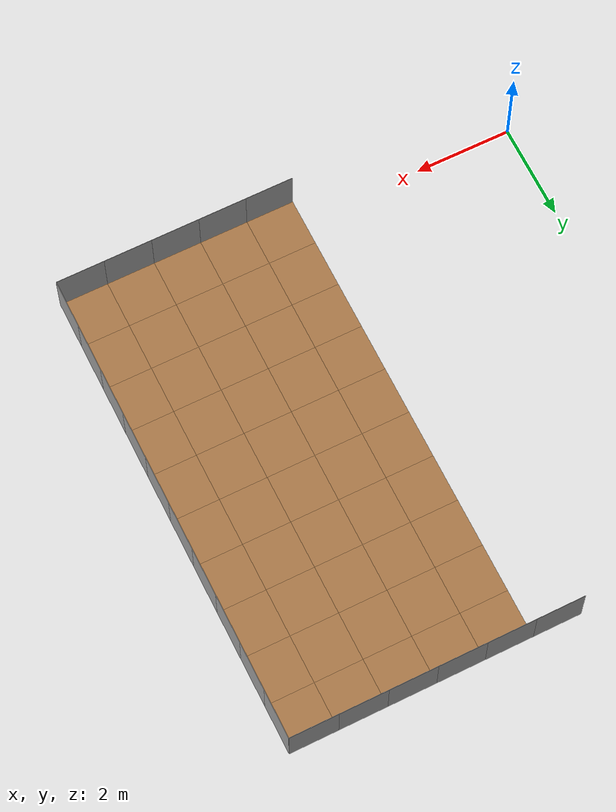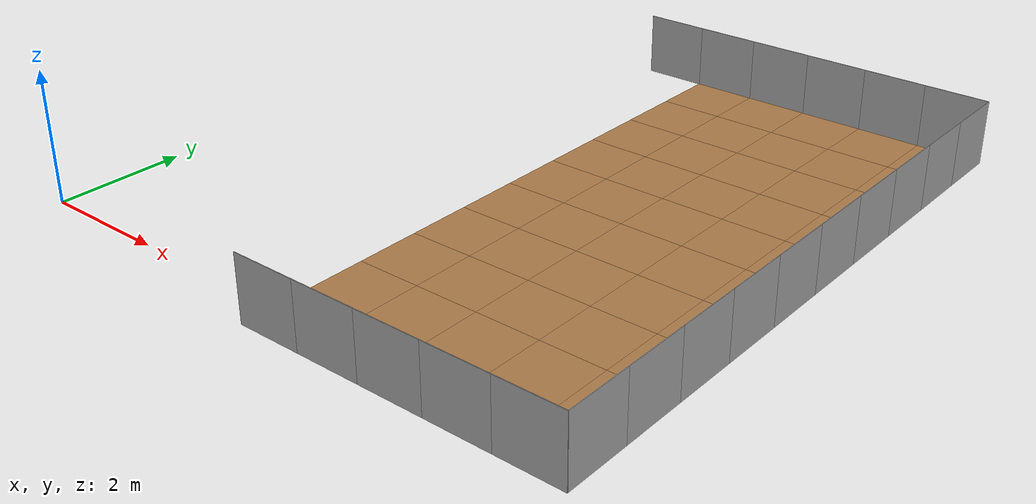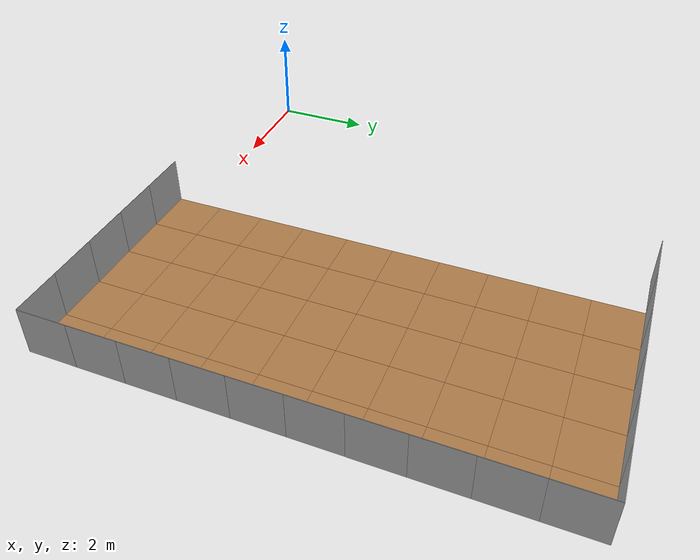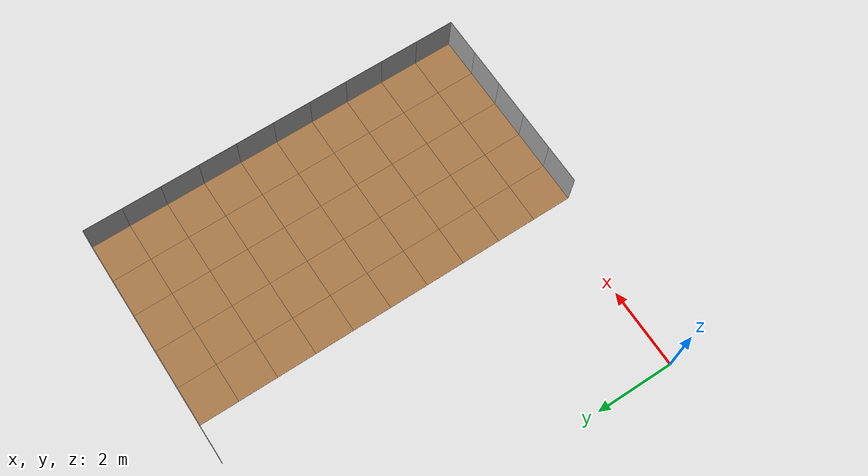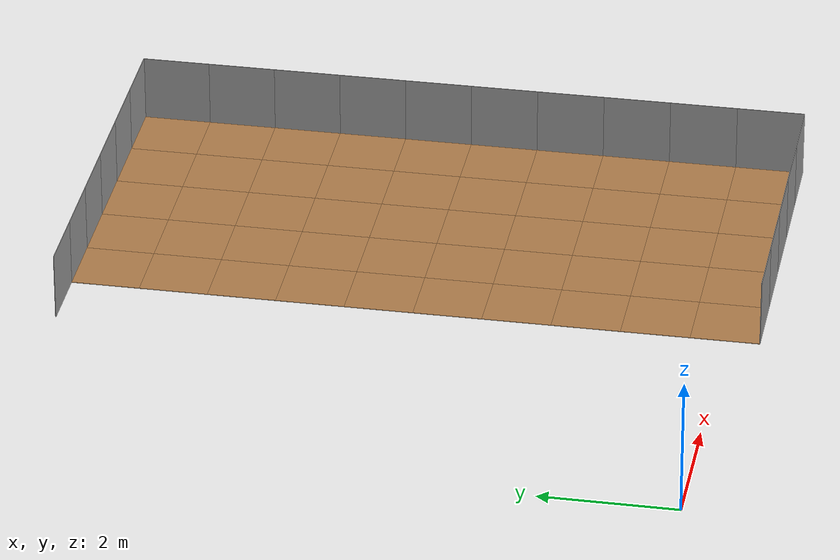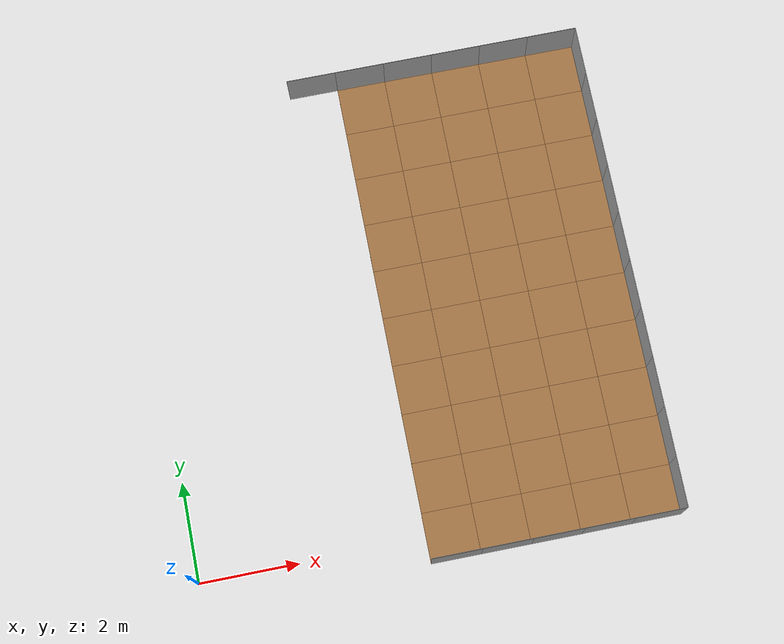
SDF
<sdf version="1.5">
 <world name="complexai">
  <include><uri>model://sun</uri></include>
  <model name="wall_top_4_9_Berlin_Storage_StorageRoom_1">
   <pose>4.0 9.5 0.5 0.0 0.0 0.0</pose>
   <static>true</static>
   <link name="link_wall_top_4_9_Berlin_Storage_StorageRoom_1">
    <collision name="collisionwall_top_4_9_Berlin_Storage_StorageRoom_1">
     <geometry><box><size>1.0 0.01 1.0</size></box></geometry>
    </collision>
    <visual name="visualwall_top_4_9_Berlin_Storage_StorageRoom_1">
     <geometry><box><size>1.0 0.01 1.0</size></box></geometry>
     <material>
      <script><uri>file://media/materials/scripts/gazebo.material</uri><name>Gazebo/Grey</name></script>
     </material>
    </visual>
   </link>
  </model>
  <model name="floor_5_9_Berlin_Storage_StorageRoom_1">
   <pose>5.0 9.0 0.0 0.0 0.0 0.0</pose>
   <static>true</static>
   <link name="link_floor_5_9_Berlin_Storage_StorageRoom_1">
    <collision name="collisionfloor_5_9_Berlin_Storage_StorageRoom_1">
     <geometry><box><size>1.0 1.0 0.01</size></box></geometry>
    </collision>
    <visual name="visualfloor_5_9_Berlin_Storage_StorageRoom_1">
     <geometry><box><size>1.0 1.0 0.01</size></box></geometry>
     <material>
      <script><uri>file://media/materials/scripts/gazebo.material</uri><name>Gazebo/WoodFloor</name></script>
     </material>
    </visual>
   </link>
  </model>
  <model name="wall_top_5_9_Berlin_Storage_StorageRoom_1">
   <pose>5.0 9.5 0.5 0.0 0.0 0.0</pose>
   <static>true</static>
   <link name="link_wall_top_5_9_Berlin_Storage_StorageRoom_1">
    <collision name="collisionwall_top_5_9_Berlin_Storage_StorageRoom_1">
     <geometry><box><size>1.0 0.01 1.0</size></box></geometry>
    </collision>
    <visual name="visualwall_top_5_9_Berlin_Storage_StorageRoom_1">
     <geometry><box><size>1.0 0.01 1.0</size></box></geometry>
     <material>
      <script><uri>file://media/materials/scripts/gazebo.material</uri><name>Gazebo/Grey</name></script>
     </material>
    </visual>
   </link>
  </model>
  <model name="floor_6_9_Berlin_Storage_StorageRoom_1">
   <pose>6.0 9.0 0.0 0.0 0.0 0.0</pose>
   <static>true</static>
   <link name="link_floor_6_9_Berlin_Storage_StorageRoom_1">
    <collision name="collisionfloor_6_9_Berlin_Storage_StorageRoom_1">
     <geometry><box><size>1.0 1.0 0.01</size></box></geometry>
    </collision>
    <visual name="visualfloor_6_9_Berlin_Storage_StorageRoom_1">
     <geometry><box><size>1.0 1.0 0.01</size></box></geometry>
     <material>
      <script><uri>file://media/materials/scripts/gazebo.material</uri><name>Gazebo/WoodFloor</name></script>
     </material>
    </visual>
   </link>
  </model>
  <model name="wall_top_6_9_Berlin_Storage_StorageRoom_1">
   <pose>6.0 9.5 0.5 0.0 0.0 0.0</pose>
   <static>true</static>
   <link name="link_wall_top_6_9_Berlin_Storage_StorageRoom_1">
    <collision name="collisionwall_top_6_9_Berlin_Storage_StorageRoom_1">
     <geometry><box><size>1.0 0.01 1.0</size></box></geometry>
    </collision>
    <visual name="visualwall_top_6_9_Berlin_Storage_StorageRoom_1">
     <geometry><box><size>1.0 0.01 1.0</size></box></geometry>
     <material>
      <script><uri>file://media/materials/scripts/gazebo.material</uri><name>Gazebo/Grey</name></script>
     </material>
    </visual>
   </link>
  </model>
  <model name="floor_6_8_Berlin_Storage_StorageRoom_1">
   <pose>6.0 8.0 0.0 0.0 0.0 0.0</pose>
   <static>true</static>
   <link name="link_floor_6_8_Berlin_Storage_StorageRoom_1">
    <collision name="collisionfloor_6_8_Berlin_Storage_StorageRoom_1">
     <geometry><box><size>1.0 1.0 0.01</size></box></geometry>
    </collision>
    <visual name="visualfloor_6_8_Berlin_Storage_StorageRoom_1">
     <geometry><box><size>1.0 1.0 0.01</size></box></geometry>
     <material>
      <script><uri>file://media/materials/scripts/gazebo.material</uri><name>Gazebo/WoodFloor</name></script>
     </material>
    </visual>
   </link>
  </model>
  <model name="floor_6_7_Berlin_Storage_StorageRoom_1">
   <pose>6.0 7.0 0.0 0.0 0.0 0.0</pose>
   <static>true</static>
   <link name="link_floor_6_7_Berlin_Storage_StorageRoom_1">
    <collision name="collisionfloor_6_7_Berlin_Storage_StorageRoom_1">
     <geometry><box><size>1.0 1.0 0.01</size></box></geometry>
    </collision>
    <visual name="visualfloor_6_7_Berlin_Storage_StorageRoom_1">
     <geometry><box><size>1.0 1.0 0.01</size></box></geometry>
     <material>
      <script><uri>file://media/materials/scripts/gazebo.material</uri><name>Gazebo/WoodFloor</name></script>
     </material>
    </visual>
   </link>
  </model>
  <model name="floor_6_6_Berlin_Storage_StorageRoom_1">
   <pose>6.0 6.0 0.0 0.0 0.0 0.0</pose>
   <static>true</static>
   <link name="link_floor_6_6_Berlin_Storage_StorageRoom_1">
    <collision name="collisionfloor_6_6_Berlin_Storage_StorageRoom_1">
     <geometry><box><size>1.0 1.0 0.01</size></box></geometry>
    </collision>
    <visual name="visualfloor_6_6_Berlin_Storage_StorageRoom_1">
     <geometry><box><size>1.0 1.0 0.01</size></box></geometry>
     <material>
      <script><uri>file://media/materials/scripts/gazebo.material</uri><name>Gazebo/WoodFloor</name></script>
     </material>
    </visual>
   </link>
  </model>
  <model name="floor_6_5_Berlin_Storage_StorageRoom_1">
   <pose>6.0 5.0 0.0 0.0 0.0 0.0</pose>
   <static>true</static>
   <link name="link_floor_6_5_Berlin_Storage_StorageRoom_1">
    <collision name="collisionfloor_6_5_Berlin_Storage_StorageRoom_1">
     <geometry><box><size>1.0 1.0 0.01</size></box></geometry>
    </collision>
    <visual name="visualfloor_6_5_Berlin_Storage_StorageRoom_1">
     <geometry><box><size>1.0 1.0 0.01</size></box></geometry>
     <material>
      <script><uri>file://media/materials/scripts/gazebo.material</uri><name>Gazebo/WoodFloor</name></script>
     </material>
    </visual>
   </link>
  </model>
  <model name="floor_6_4_Berlin_Storage_StorageRoom_1">
   <pose>6.0 4.0 0.0 0.0 0.0 0.0</pose>
   <static>true</static>
   <link name="link_floor_6_4_Berlin_Storage_StorageRoom_1">
    <collision name="collisionfloor_6_4_Berlin_Storage_StorageRoom_1">
     <geometry><box><size>1.0 1.0 0.01</size></box></geometry>
    </collision>
    <visual name="visualfloor_6_4_Berlin_Storage_StorageRoom_1">
     <geometry><box><size>1.0 1.0 0.01</size></box></geometry>
     <material>
      <script><uri>file://media/materials/scripts/gazebo.material</uri><name>Gazebo/WoodFloor</name></script>
     </material>
    </visual>
   </link>
  </model>
  <model name="floor_6_3_Berlin_Storage_StorageRoom_1">
   <pose>6.0 3.0 0.0 0.0 0.0 0.0</pose>
   <static>true</static>
   <link name="link_floor_6_3_Berlin_Storage_StorageRoom_1">
    <collision name="collisionfloor_6_3_Berlin_Storage_StorageRoom_1">
     <geometry><box><size>1.0 1.0 0.01</size></box></geometry>
    </collision>
    <visual name="visualfloor_6_3_Berlin_Storage_StorageRoom_1">
     <geometry><box><size>1.0 1.0 0.01</size></box></geometry>
     <material>
      <script><uri>file://media/materials/scripts/gazebo.material</uri><name>Gazebo/WoodFloor</name></script>
     </material>
    </visual>
   </link>
  </model>
  <model name="floor_6_2_Berlin_Storage_StorageRoom_1">
   <pose>6.0 2.0 0.0 0.0 0.0 0.0</pose>
   <static>true</static>
   <link name="link_floor_6_2_Berlin_Storage_StorageRoom_1">
    <collision name="collisionfloor_6_2_Berlin_Storage_StorageRoom_1">
     <geometry><box><size>1.0 1.0 0.01</size></box></geometry>
    </collision>
    <visual name="visualfloor_6_2_Berlin_Storage_StorageRoom_1">
     <geometry><box><size>1.0 1.0 0.01</size></box></geometry>
     <material>
      <script><uri>file://media/materials/scripts/gazebo.material</uri><name>Gazebo/WoodFloor</name></script>
     </material>
    </visual>
   </link>
  </model>
  <model name="floor_6_1_Berlin_Storage_StorageRoom_1">
   <pose>6.0 1.0 0.0 0.0 0.0 0.0</pose>
   <static>true</static>
   <link name="link_floor_6_1_Berlin_Storage_StorageRoom_1">
    <collision name="collisionfloor_6_1_Berlin_Storage_StorageRoom_1">
     <geometry><box><size>1.0 1.0 0.01</size></box></geometry>
    </collision>
    <visual name="visualfloor_6_1_Berlin_Storage_StorageRoom_1">
     <geometry><box><size>1.0 1.0 0.01</size></box></geometry>
     <material>
      <script><uri>file://media/materials/scripts/gazebo.material</uri><name>Gazebo/WoodFloor</name></script>
     </material>
    </visual>
   </link>
  </model>
  <model name="floor_6_0_Berlin_Storage_StorageRoom_1">
   <pose>6.0 0.0 0.0 0.0 0.0 0.0</pose>
   <static>true</static>
   <link name="link_floor_6_0_Berlin_Storage_StorageRoom_1">
    <collision name="collisionfloor_6_0_Berlin_Storage_StorageRoom_1">
     <geometry><box><size>1.0 1.0 0.01</size></box></geometry>
    </collision>
    <visual name="visualfloor_6_0_Berlin_Storage_StorageRoom_1">
     <geometry><box><size>1.0 1.0 0.01</size></box></geometry>
     <material>
      <script><uri>file://media/materials/scripts/gazebo.material</uri><name>Gazebo/WoodFloor</name></script>
     </material>
    </visual>
   </link>
  </model>
  <model name="wall_bottom_6_0_Berlin_Storage_StorageRoom_1">
   <pose>6.0 -0.5 0.5 0.0 0.0 0.0</pose>
   <static>true</static>
   <link name="link_wall_bottom_6_0_Berlin_Storage_StorageRoom_1">
    <collision name="collisionwall_bottom_6_0_Berlin_Storage_StorageRoom_1">
     <geometry><box><size>1.0 0.01 1.0</size></box></geometry>
    </collision>
    <visual name="visualwall_bottom_6_0_Berlin_Storage_StorageRoom_1">
     <geometry><box><size>1.0 0.01 1.0</size></box></geometry>
     <material>
      <script><uri>file://media/materials/scripts/gazebo.material</uri><name>Gazebo/Grey</name></script>
     </material>
    </visual>
   </link>
  </model>
  <model name="floor_7_0_Berlin_Storage_StorageRoom_1">
   <pose>7.0 0.0 0.0 0.0 0.0 0.0</pose>
   <static>true</static>
   <link name="link_floor_7_0_Berlin_Storage_StorageRoom_1">
    <collision name="collisionfloor_7_0_Berlin_Storage_StorageRoom_1">
     <geometry><box><size>1.0 1.0 0.01</size></box></geometry>
    </collision>
    <visual name="visualfloor_7_0_Berlin_Storage_StorageRoom_1">
     <geometry><box><size>1.0 1.0 0.01</size></box></geometry>
     <material>
      <script><uri>file://media/materials/scripts/gazebo.material</uri><name>Gazebo/WoodFloor</name></script>
     </material>
    </visual>
   </link>
  </model>
  <model name="wall_bottom_7_0_Berlin_Storage_StorageRoom_1">
   <pose>7.0 -0.5 0.5 0.0 0.0 0.0</pose>
   <static>true</static>
   <link name="link_wall_bottom_7_0_Berlin_Storage_StorageRoom_1">
    <collision name="collisionwall_bottom_7_0_Berlin_Storage_StorageRoom_1">
     <geometry><box><size>1.0 0.01 1.0</size></box></geometry>
    </collision>
    <visual name="visualwall_bottom_7_0_Berlin_Storage_StorageRoom_1">
     <geometry><box><size>1.0 0.01 1.0</size></box></geometry>
     <material>
      <script><uri>file://media/materials/scripts/gazebo.material</uri><name>Gazebo/Grey</name></script>
     </material>
    </visual>
   </link>
  </model>
  <model name="floor_8_0_Berlin_Storage_StorageRoom_1">
   <pose>8.0 0.0 0.0 0.0 0.0 0.0</pose>
   <static>true</static>
   <link name="link_floor_8_0_Berlin_Storage_StorageRoom_1">
    <collision name="collisionfloor_8_0_Berlin_Storage_StorageRoom_1">
     <geometry><box><size>1.0 1.0 0.01</size></box></geometry>
    </collision>
    <visual name="visualfloor_8_0_Berlin_Storage_StorageRoom_1">
     <geometry><box><size>1.0 1.0 0.01</size></box></geometry>
     <material>
      <script><uri>file://media/materials/scripts/gazebo.material</uri><name>Gazebo/WoodFloor</name></script>
     </material>
    </visual>
   </link>
  </model>
  <model name="wall_bottom_8_0_Berlin_Storage_StorageRoom_1">
   <pose>8.0 -0.5 0.5 0.0 0.0 0.0</pose>
   <static>true</static>
   <link name="link_wall_bottom_8_0_Berlin_Storage_StorageRoom_1">
    <collision name="collisionwall_bottom_8_0_Berlin_Storage_StorageRoom_1">
     <geometry><box><size>1.0 0.01 1.0</size></box></geometry>
    </collision>
    <visual name="visualwall_bottom_8_0_Berlin_Storage_StorageRoom_1">
     <geometry><box><size>1.0 0.01 1.0</size></box></geometry>
     <material>
      <script><uri>file://media/materials/scripts/gazebo.material</uri><name>Gazebo/Grey</name></script>
     </material>
    </visual>
   </link>
  </model>
  <model name="floor_8_1_Berlin_Storage_StorageRoom_1">
   <pose>8.0 1.0 0.0 0.0 0.0 0.0</pose>
   <static>true</static>
   <link name="link_floor_8_1_Berlin_Storage_StorageRoom_1">
    <collision name="collisionfloor_8_1_Berlin_Storage_StorageRoom_1">
     <geometry><box><size>1.0 1.0 0.01</size></box></geometry>
    </collision>
    <visual name="visualfloor_8_1_Berlin_Storage_StorageRoom_1">
     <geometry><box><size>1.0 1.0 0.01</size></box></geometry>
     <material>
      <script><uri>file://media/materials/scripts/gazebo.material</uri><name>Gazebo/WoodFloor</name></script>
     </material>
    </visual>
   </link>
  </model>
  <model name="floor_8_2_Berlin_Storage_StorageRoom_1">
   <pose>8.0 2.0 0.0 0.0 0.0 0.0</pose>
   <static>true</static>
   <link name="link_floor_8_2_Berlin_Storage_StorageRoom_1">
    <collision name="collisionfloor_8_2_Berlin_Storage_StorageRoom_1">
     <geometry><box><size>1.0 1.0 0.01</size></box></geometry>
    </collision>
    <visual name="visualfloor_8_2_Berlin_Storage_StorageRoom_1">
     <geometry><box><size>1.0 1.0 0.01</size></box></geometry>
     <material>
      <script><uri>file://media/materials/scripts/gazebo.material</uri><name>Gazebo/WoodFloor</name></script>
     </material>
    </visual>
   </link>
  </model>
  <model name="floor_8_3_Berlin_Storage_StorageRoom_1">
   <pose>8.0 3.0 0.0 0.0 0.0 0.0</pose>
   <static>true</static>
   <link name="link_floor_8_3_Berlin_Storage_StorageRoom_1">
    <collision name="collisionfloor_8_3_Berlin_Storage_StorageRoom_1">
     <geometry><box><size>1.0 1.0 0.01</size></box></geometry>
    </collision>
    <visual name="visualfloor_8_3_Berlin_Storage_StorageRoom_1">
     <geometry><box><size>1.0 1.0 0.01</size></box></geometry>
     <material>
      <script><uri>file://media/materials/scripts/gazebo.material</uri><name>Gazebo/WoodFloor</name></script>
     </material>
    </visual>
   </link>
  </model>
  <model name="floor_8_4_Berlin_Storage_StorageRoom_1">
   <pose>8.0 4.0 0.0 0.0 0.0 0.0</pose>
   <static>true</static>
   <link name="link_floor_8_4_Berlin_Storage_StorageRoom_1">
    <collision name="collisionfloor_8_4_Berlin_Storage_StorageRoom_1">
     <geometry><box><size>1.0 1.0 0.01</size></box></geometry>
    </collision>
    <visual name="visualfloor_8_4_Berlin_Storage_StorageRoom_1">
     <geometry><box><size>1.0 1.0 0.01</size></box></geometry>
     <material>
      <script><uri>file://media/materials/scripts/gazebo.material</uri><name>Gazebo/WoodFloor</name></script>
     </material>
    </visual>
   </link>
  </model>
  <model name="floor_8_5_Berlin_Storage_StorageRoom_1">
   <pose>8.0 5.0 0.0 0.0 0.0 0.0</pose>
   <static>true</static>
   <link name="link_floor_8_5_Berlin_Storage_StorageRoom_1">
    <collision name="collisionfloor_8_5_Berlin_Storage_StorageRoom_1">
     <geometry><box><size>1.0 1.0 0.01</size></box></geometry>
    </collision>
    <visual name="visualfloor_8_5_Berlin_Storage_StorageRoom_1">
     <geometry><box><size>1.0 1.0 0.01</size></box></geometry>
     <material>
      <script><uri>file://media/materials/scripts/gazebo.material</uri><name>Gazebo/WoodFloor</name></script>
     </material>
    </visual>
   </link>
  </model>
  <model name="floor_8_6_Berlin_Storage_StorageRoom_1">
   <pose>8.0 6.0 0.0 0.0 0.0 0.0</pose>
   <static>true</static>
   <link name="link_floor_8_6_Berlin_Storage_StorageRoom_1">
    <collision name="collisionfloor_8_6_Berlin_Storage_StorageRoom_1">
     <geometry><box><size>1.0 1.0 0.01</size></box></geometry>
    </collision>
    <visual name="visualfloor_8_6_Berlin_Storage_StorageRoom_1">
     <geometry><box><size>1.0 1.0 0.01</size></box></geometry>
     <material>
      <script><uri>file://media/materials/scripts/gazebo.material</uri><name>Gazebo/WoodFloor</name></script>
     </material>
    </visual>
   </link>
  </model>
  <model name="floor_8_7_Berlin_Storage_StorageRoom_1">
   <pose>8.0 7.0 0.0 0.0 0.0 0.0</pose>
   <static>true</static>
   <link name="link_floor_8_7_Berlin_Storage_StorageRoom_1">
    <collision name="collisionfloor_8_7_Berlin_Storage_StorageRoom_1">
     <geometry><box><size>1.0 1.0 0.01</size></box></geometry>
    </collision>
    <visual name="visualfloor_8_7_Berlin_Storage_StorageRoom_1">
     <geometry><box><size>1.0 1.0 0.01</size></box></geometry>
     <material>
      <script><uri>file://media/materials/scripts/gazebo.material</uri><name>Gazebo/WoodFloor</name></script>
     </material>
    </visual>
   </link>
  </model>
  <model name="floor_8_8_Berlin_Storage_StorageRoom_1">
   <pose>8.0 8.0 0.0 0.0 0.0 0.0</pose>
   <static>true</static>
   <link name="link_floor_8_8_Berlin_Storage_StorageRoom_1">
    <collision name="collisionfloor_8_8_Berlin_Storage_StorageRoom_1">
     <geometry><box><size>1.0 1.0 0.01</size></box></geometry>
    </collision>
    <visual name="visualfloor_8_8_Berlin_Storage_StorageRoom_1">
     <geometry><box><size>1.0 1.0 0.01</size></box></geometry>
     <material>
      <script><uri>file://media/materials/scripts/gazebo.material</uri><name>Gazebo/WoodFloor</name></script>
     </material>
    </visual>
   </link>
  </model>
  <model name="floor_8_9_Berlin_Storage_StorageRoom_1">
   <pose>8.0 9.0 0.0 0.0 0.0 0.0</pose>
   <static>true</static>
   <link name="link_floor_8_9_Berlin_Storage_StorageRoom_1">
    <collision name="collisionfloor_8_9_Berlin_Storage_StorageRoom_1">
     <geometry><box><size>1.0 1.0 0.01</size></box></geometry>
    </collision>
    <visual name="visualfloor_8_9_Berlin_Storage_StorageRoom_1">
     <geometry><box><size>1.0 1.0 0.01</size></box></geometry>
     <material>
      <script><uri>file://media/materials/scripts/gazebo.material</uri><name>Gazebo/WoodFloor</name></script>
     </material>
    </visual>
   </link>
  </model>
  <model name="wall_top_8_9_Berlin_Storage_StorageRoom_1">
   <pose>8.0 9.5 0.5 0.0 0.0 0.0</pose>
   <static>true</static>
   <link name="link_wall_top_8_9_Berlin_Storage_StorageRoom_1">
    <collision name="collisionwall_top_8_9_Berlin_Storage_StorageRoom_1">
     <geometry><box><size>1.0 0.01 1.0</size></box></geometry>
    </collision>
    <visual name="visualwall_top_8_9_Berlin_Storage_StorageRoom_1">
     <geometry><box><size>1.0 0.01 1.0</size></box></geometry>
     <material>
      <script><uri>file://media/materials/scripts/gazebo.material</uri><name>Gazebo/Grey</name></script>
     </material>
    </visual>
   </link>
  </model>
  <model name="floor_9_9_Berlin_Storage_StorageRoom_1">
   <pose>9.0 9.0 0.0 0.0 0.0 0.0</pose>
   <static>true</static>
   <link name="link_floor_9_9_Berlin_Storage_StorageRoom_1">
    <collision name="collisionfloor_9_9_Berlin_Storage_StorageRoom_1">
     <geometry><box><size>1.0 1.0 0.01</size></box></geometry>
    </collision>
    <visual name="visualfloor_9_9_Berlin_Storage_StorageRoom_1">
     <geometry><box><size>1.0 1.0 0.01</size></box></geometry>
     <material>
      <script><uri>file://media/materials/scripts/gazebo.material</uri><name>Gazebo/WoodFloor</name></script>
     </material>
    </visual>
   </link>
  </model>
  <model name="wall_right_9_9_Berlin_Storage_StorageRoom_1">
   <pose>9.5 9.0 0.5 0.0 0.0 1.5707963</pose>
   <static>true</static>
   <link name="link_wall_right_9_9_Berlin_Storage_StorageRoom_1">
    <collision name="collisionwall_right_9_9_Berlin_Storage_StorageRoom_1">
     <geometry><box><size>1.0 0.01 1.0</size></box></geometry>
    </collision>
    <visual name="visualwall_right_9_9_Berlin_Storage_StorageRoom_1">
     <geometry><box><size>1.0 0.01 1.0</size></box></geometry>
     <material>
      <script><uri>file://media/materials/scripts/gazebo.material</uri><name>Gazebo/Grey</name></script>
     </material>
    </visual>
   </link>
  </model>
  <model name="wall_top_9_9_Berlin_Storage_StorageRoom_1">
   <pose>9.0 9.5 0.5 0.0 0.0 0.0</pose>
   <static>true</static>
   <link name="link_wall_top_9_9_Berlin_Storage_StorageRoom_1">
    <collision name="collisionwall_top_9_9_Berlin_Storage_StorageRoom_1">
     <geometry><box><size>1.0 0.01 1.0</size></box></geometry>
    </collision>
    <visual name="visualwall_top_9_9_Berlin_Storage_StorageRoom_1">
     <geometry><box><size>1.0 0.01 1.0</size></box></geometry>
     <material>
      <script><uri>file://media/materials/scripts/gazebo.material</uri><name>Gazebo/Grey</name></script>
     </material>
    </visual>
   </link>
  </model>
  <model name="floor_9_8_Berlin_Storage_StorageRoom_1">
   <pose>9.0 8.0 0.0 0.0 0.0 0.0</pose>
   <static>true</static>
   <link name="link_floor_9_8_Berlin_Storage_StorageRoom_1">
    <collision name="collisionfloor_9_8_Berlin_Storage_StorageRoom_1">
     <geometry><box><size>1.0 1.0 0.01</size></box></geometry>
    </collision>
    <visual name="visualfloor_9_8_Berlin_Storage_StorageRoom_1">
     <geometry><box><size>1.0 1.0 0.01</size></box></geometry>
     <material>
      <script><uri>file://media/materials/scripts/gazebo.material</uri><name>Gazebo/WoodFloor</name></script>
     </material>
    </visual>
   </link>
  </model>
  <model name="wall_right_9_8_Berlin_Storage_StorageRoom_1">
   <pose>9.5 8.0 0.5 0.0 0.0 1.5707963</pose>
   <static>true</static>
   <link name="link_wall_right_9_8_Berlin_Storage_StorageRoom_1">
    <collision name="collisionwall_right_9_8_Berlin_Storage_StorageRoom_1">
     <geometry><box><size>1.0 0.01 1.0</size></box></geometry>
    </collision>
    <visual name="visualwall_right_9_8_Berlin_Storage_StorageRoom_1">
     <geometry><box><size>1.0 0.01 1.0</size></box></geometry>
     <material>
      <script><uri>file://media/materials/scripts/gazebo.material</uri><name>Gazebo/Grey</name></script>
     </material>
    </visual>
   </link>
  </model>
  <model name="floor_9_7_Berlin_Storage_StorageRoom_1">
   <pose>9.0 7.0 0.0 0.0 0.0 0.0</pose>
   <static>true</static>
   <link name="link_floor_9_7_Berlin_Storage_StorageRoom_1">
    <collision name="collisionfloor_9_7_Berlin_Storage_StorageRoom_1">
     <geometry><box><size>1.0 1.0 0.01</size></box></geometry>
    </collision>
    <visual name="visualfloor_9_7_Berlin_Storage_StorageRoom_1">
     <geometry><box><size>1.0 1.0 0.01</size></box></geometry>
     <material>
      <script><uri>file://media/materials/scripts/gazebo.material</uri><name>Gazebo/WoodFloor</name></script>
     </material>
    </visual>
   </link>
  </model>
  <model name="wall_right_9_7_Berlin_Storage_StorageRoom_1">
   <pose>9.5 7.0 0.5 0.0 0.0 1.5707963</pose>
   <static>true</static>
   <link name="link_wall_right_9_7_Berlin_Storage_StorageRoom_1">
    <collision name="collisionwall_right_9_7_Berlin_Storage_StorageRoom_1">
     <geometry><box><size>1.0 0.01 1.0</size></box></geometry>
    </collision>
    <visual name="visualwall_right_9_7_Berlin_Storage_StorageRoom_1">
     <geometry><box><size>1.0 0.01 1.0</size></box></geometry>
     <material>
      <script><uri>file://media/materials/scripts/gazebo.material</uri><name>Gazebo/Grey</name></script>
     </material>
    </visual>
   </link>
  </model>
  <model name="floor_9_6_Berlin_Storage_StorageRoom_1">
   <pose>9.0 6.0 0.0 0.0 0.0 0.0</pose>
   <static>true</static>
   <link name="link_floor_9_6_Berlin_Storage_StorageRoom_1">
    <collision name="collisionfloor_9_6_Berlin_Storage_StorageRoom_1">
     <geometry><box><size>1.0 1.0 0.01</size></box></geometry>
    </collision>
    <visual name="visualfloor_9_6_Berlin_Storage_StorageRoom_1">
     <geometry><box><size>1.0 1.0 0.01</size></box></geometry>
     <material>
      <script><uri>file://media/materials/scripts/gazebo.material</uri><name>Gazebo/WoodFloor</name></script>
     </material>
    </visual>
   </link>
  </model>
  <model name="wall_right_9_6_Berlin_Storage_StorageRoom_1">
   <pose>9.5 6.0 0.5 0.0 0.0 1.5707963</pose>
   <static>true</static>
   <link name="link_wall_right_9_6_Berlin_Storage_StorageRoom_1">
    <collision name="collisionwall_right_9_6_Berlin_Storage_StorageRoom_1">
     <geometry><box><size>1.0 0.01 1.0</size></box></geometry>
    </collision>
    <visual name="visualwall_right_9_6_Berlin_Storage_StorageRoom_1">
     <geometry><box><size>1.0 0.01 1.0</size></box></geometry>
     <material>
      <script><uri>file://media/materials/scripts/gazebo.material</uri><name>Gazebo/Grey</name></script>
     </material>
    </visual>
   </link>
  </model>
  <model name="floor_9_5_Berlin_Storage_StorageRoom_1">
   <pose>9.0 5.0 0.0 0.0 0.0 0.0</pose>
   <static>true</static>
   <link name="link_floor_9_5_Berlin_Storage_StorageRoom_1">
    <collision name="collisionfloor_9_5_Berlin_Storage_StorageRoom_1">
     <geometry><box><size>1.0 1.0 0.01</size></box></geometry>
    </collision>
    <visual name="visualfloor_9_5_Berlin_Storage_StorageRoom_1">
     <geometry><box><size>1.0 1.0 0.01</size></box></geometry>
     <material>
      <script><uri>file://media/materials/scripts/gazebo.material</uri><name>Gazebo/WoodFloor</name></script>
     </material>
    </visual>
   </link>
  </model>
  <model name="wall_right_9_5_Berlin_Storage_StorageRoom_1">
   <pose>9.5 5.0 0.5 0.0 0.0 1.5707963</pose>
   <static>true</static>
   <link name="link_wall_right_9_5_Berlin_Storage_StorageRoom_1">
    <collision name="collisionwall_right_9_5_Berlin_Storage_StorageRoom_1">
     <geometry><box><size>1.0 0.01 1.0</size></box></geometry>
    </collision>
    <visual name="visualwall_right_9_5_Berlin_Storage_StorageRoom_1">
     <geometry><box><size>1.0 0.01 1.0</size></box></geometry>
     <material>
      <script><uri>file://media/materials/scripts/gazebo.material</uri><name>Gazebo/Grey</name></script>
     </material>
    </visual>
   </link>
  </model>
  <model name="floor_9_4_Berlin_Storage_StorageRoom_1">
   <pose>9.0 4.0 0.0 0.0 0.0 0.0</pose>
   <static>true</static>
   <link name="link_floor_9_4_Berlin_Storage_StorageRoom_1">
    <collision name="collisionfloor_9_4_Berlin_Storage_StorageRoom_1">
     <geometry><box><size>1.0 1.0 0.01</size></box></geometry>
    </collision>
    <visual name="visualfloor_9_4_Berlin_Storage_StorageRoom_1">
     <geometry><box><size>1.0 1.0 0.01</size></box></geometry>
     <material>
      <script><uri>file://media/materials/scripts/gazebo.material</uri><name>Gazebo/WoodFloor</name></script>
     </material>
    </visual>
   </link>
  </model>
  <model name="wall_right_9_4_Berlin_Storage_StorageRoom_1">
   <pose>9.5 4.0 0.5 0.0 0.0 1.5707963</pose>
   <static>true</static>
   <link name="link_wall_right_9_4_Berlin_Storage_StorageRoom_1">
    <collision name="collisionwall_right_9_4_Berlin_Storage_StorageRoom_1">
     <geometry><box><size>1.0 0.01 1.0</size></box></geometry>
    </collision>
    <visual name="visualwall_right_9_4_Berlin_Storage_StorageRoom_1">
     <geometry><box><size>1.0 0.01 1.0</size></box></geometry>
     <material>
      <script><uri>file://media/materials/scripts/gazebo.material</uri><name>Gazebo/Grey</name></script>
     </material>
    </visual>
   </link>
  </model>
  <model name="floor_9_3_Berlin_Storage_StorageRoom_1">
   <pose>9.0 3.0 0.0 0.0 0.0 0.0</pose>
   <static>true</static>
   <link name="link_floor_9_3_Berlin_Storage_StorageRoom_1">
    <collision name="collisionfloor_9_3_Berlin_Storage_StorageRoom_1">
     <geometry><box><size>1.0 1.0 0.01</size></box></geometry>
    </collision>
    <visual name="visualfloor_9_3_Berlin_Storage_StorageRoom_1">
     <geometry><box><size>1.0 1.0 0.01</size></box></geometry>
     <material>
      <script><uri>file://media/materials/scripts/gazebo.material</uri><name>Gazebo/WoodFloor</name></script>
     </material>
    </visual>
   </link>
  </model>
  <model name="wall_right_9_3_Berlin_Storage_StorageRoom_1">
   <pose>9.5 3.0 0.5 0.0 0.0 1.5707963</pose>
   <static>true</static>
   <link name="link_wall_right_9_3_Berlin_Storage_StorageRoom_1">
    <collision name="collisionwall_right_9_3_Berlin_Storage_StorageRoom_1">
     <geometry><box><size>1.0 0.01 1.0</size></box></geometry>
    </collision>
    <visual name="visualwall_right_9_3_Berlin_Storage_StorageRoom_1">
     <geometry><box><size>1.0 0.01 1.0</size></box></geometry>
     <material>
      <script><uri>file://media/materials/scripts/gazebo.material</uri><name>Gazebo/Grey</name></script>
     </material>
    </visual>
   </link>
  </model>
  <model name="floor_9_2_Berlin_Storage_StorageRoom_1">
   <pose>9.0 2.0 0.0 0.0 0.0 0.0</pose>
   <static>true</static>
   <link name="link_floor_9_2_Berlin_Storage_StorageRoom_1">
    <collision name="collisionfloor_9_2_Berlin_Storage_StorageRoom_1">
     <geometry><box><size>1.0 1.0 0.01</size></box></geometry>
    </collision>
    <visual name="visualfloor_9_2_Berlin_Storage_StorageRoom_1">
     <geometry><box><size>1.0 1.0 0.01</size></box></geometry>
     <material>
      <script><uri>file://media/materials/scripts/gazebo.material</uri><name>Gazebo/WoodFloor</name></script>
     </material>
    </visual>
   </link>
  </model>
  <model name="wall_right_9_2_Berlin_Storage_StorageRoom_1">
   <pose>9.5 2.0 0.5 0.0 0.0 1.5707963</pose>
   <static>true</static>
   <link name="link_wall_right_9_2_Berlin_Storage_StorageRoom_1">
    <collision name="collisionwall_right_9_2_Berlin_Storage_StorageRoom_1">
     <geometry><box><size>1.0 0.01 1.0</size></box></geometry>
    </collision>
    <visual name="visualwall_right_9_2_Berlin_Storage_StorageRoom_1">
     <geometry><box><size>1.0 0.01 1.0</size></box></geometry>
     <material>
      <script><uri>file://media/materials/scripts/gazebo.material</uri><name>Gazebo/Grey</name></script>
     </material>
    </visual>
   </link>
  </model>
  <model name="floor_9_1_Berlin_Storage_StorageRoom_1">
   <pose>9.0 1.0 0.0 0.0 0.0 0.0</pose>
   <static>true</static>
   <link name="link_floor_9_1_Berlin_Storage_StorageRoom_1">
    <collision name="collisionfloor_9_1_Berlin_Storage_StorageRoom_1">
     <geometry><box><size>1.0 1.0 0.01</size></box></geometry>
    </collision>
    <visual name="visualfloor_9_1_Berlin_Storage_StorageRoom_1">
     <geometry><box><size>1.0 1.0 0.01</size></box></geometry>
     <material>
      <script><uri>file://media/materials/scripts/gazebo.material</uri><name>Gazebo/WoodFloor</name></script>
     </material>
    </visual>
   </link>
  </model>
  <model name="wall_right_9_1_Berlin_Storage_StorageRoom_1">
   <pose>9.5 1.0 0.5 0.0 0.0 1.5707963</pose>
   <static>true</static>
   <link name="link_wall_right_9_1_Berlin_Storage_StorageRoom_1">
    <collision name="collisionwall_right_9_1_Berlin_Storage_StorageRoom_1">
     <geometry><box><size>1.0 0.01 1.0</size></box></geometry>
    </collision>
    <visual name="visualwall_right_9_1_Berlin_Storage_StorageRoom_1">
     <geometry><box><size>1.0 0.01 1.0</size></box></geometry>
     <material>
      <script><uri>file://media/materials/scripts/gazebo.material</uri><name>Gazebo/Grey</name></script>
     </material>
    </visual>
   </link>
  </model>
  <model name="floor_9_0_Berlin_Storage_StorageRoom_1">
   <pose>9.0 0.0 0.0 0.0 0.0 0.0</pose>
   <static>true</static>
   <link name="link_floor_9_0_Berlin_Storage_StorageRoom_1">
    <collision name="collisionfloor_9_0_Berlin_Storage_StorageRoom_1">
     <geometry><box><size>1.0 1.0 0.01</size></box></geometry>
    </collision>
    <visual name="visualfloor_9_0_Berlin_Storage_StorageRoom_1">
     <geometry><box><size>1.0 1.0 0.01</size></box></geometry>
     <material>
      <script><uri>file://media/materials/scripts/gazebo.material</uri><name>Gazebo/WoodFloor</name></script>
     </material>
    </visual>
   </link>
  </model>
  <model name="wall_right_9_0_Berlin_Storage_StorageRoom_1">
   <pose>9.5 0.0 0.5 0.0 0.0 1.5707963</pose>
   <static>true</static>
   <link name="link_wall_right_9_0_Berlin_Storage_StorageRoom_1">
    <collision name="collisionwall_right_9_0_Berlin_Storage_StorageRoom_1">
     <geometry><box><size>1.0 0.01 1.0</size></box></geometry>
    </collision>
    <visual name="visualwall_right_9_0_Berlin_Storage_StorageRoom_1">
     <geometry><box><size>1.0 0.01 1.0</size></box></geometry>
     <material>
      <script><uri>file://media/materials/scripts/gazebo.material</uri><name>Gazebo/Grey</name></script>
     </material>
    </visual>
   </link>
  </model>
  <model name="wall_bottom_9_0_Berlin_Storage_StorageRoom_1">
   <pose>9.0 -0.5 0.5 0.0 0.0 0.0</pose>
   <static>true</static>
   <link name="link_wall_bottom_9_0_Berlin_Storage_StorageRoom_1">
    <collision name="collisionwall_bottom_9_0_Berlin_Storage_StorageRoom_1">
     <geometry><box><size>1.0 0.01 1.0</size></box></geometry>
    </collision>
    <visual name="visualwall_bottom_9_0_Berlin_Storage_StorageRoom_1">
     <geometry><box><size>1.0 0.01 1.0</size></box></geometry>
     <material>
      <script><uri>file://media/materials/scripts/gazebo.material</uri><name>Gazebo/Grey</name></script>
     </material>
    </visual>
   </link>
  </model>
  <model name="floor_7_1_Berlin_Storage_StorageRoom_1">
   <pose>7.0 1.0 0.0 0.0 0.0 0.0</pose>
   <static>true</static>
   <link name="link_floor_7_1_Berlin_Storage_StorageRoom_1">
    <collision name="collisionfloor_7_1_Berlin_Storage_StorageRoom_1">
     <geometry><box><size>1.0 1.0 0.01</size></box></geometry>
    </collision>
    <visual name="visualfloor_7_1_Berlin_Storage_StorageRoom_1">
     <geometry><box><size>1.0 1.0 0.01</size></box></geometry>
     <material>
      <script><uri>file://media/materials/scripts/gazebo.material</uri><name>Gazebo/WoodFloor</name></script>
     </material>
    </visual>
   </link>
  </model>
  <model name="floor_7_2_Berlin_Storage_StorageRoom_1">
   <pose>7.0 2.0 0.0 0.0 0.0 0.0</pose>
   <static>true</static>
   <link name="link_floor_7_2_Berlin_Storage_StorageRoom_1">
    <collision name="collisionfloor_7_2_Berlin_Storage_StorageRoom_1">
     <geometry><box><size>1.0 1.0 0.01</size></box></geometry>
    </collision>
    <visual name="visualfloor_7_2_Berlin_Storage_StorageRoom_1">
     <geometry><box><size>1.0 1.0 0.01</size></box></geometry>
     <material>
      <script><uri>file://media/materials/scripts/gazebo.material</uri><name>Gazebo/WoodFloor</name></script>
     </material>
    </visual>
   </link>
  </model>
  <model name="floor_7_3_Berlin_Storage_StorageRoom_1">
   <pose>7.0 3.0 0.0 0.0 0.0 0.0</pose>
   <static>true</static>
   <link name="link_floor_7_3_Berlin_Storage_StorageRoom_1">
    <collision name="collisionfloor_7_3_Berlin_Storage_StorageRoom_1">
     <geometry><box><size>1.0 1.0 0.01</size></box></geometry>
    </collision>
    <visual name="visualfloor_7_3_Berlin_Storage_StorageRoom_1">
     <geometry><box><size>1.0 1.0 0.01</size></box></geometry>
     <material>
      <script><uri>file://media/materials/scripts/gazebo.material</uri><name>Gazebo/WoodFloor</name></script>
     </material>
    </visual>
   </link>
  </model>
  <model name="floor_7_4_Berlin_Storage_StorageRoom_1">
   <pose>7.0 4.0 0.0 0.0 0.0 0.0</pose>
   <static>true</static>
   <link name="link_floor_7_4_Berlin_Storage_StorageRoom_1">
    <collision name="collisionfloor_7_4_Berlin_Storage_StorageRoom_1">
     <geometry><box><size>1.0 1.0 0.01</size></box></geometry>
    </collision>
    <visual name="visualfloor_7_4_Berlin_Storage_StorageRoom_1">
     <geometry><box><size>1.0 1.0 0.01</size></box></geometry>
     <material>
      <script><uri>file://media/materials/scripts/gazebo.material</uri><name>Gazebo/WoodFloor</name></script>
     </material>
    </visual>
   </link>
  </model>
  <model name="floor_7_5_Berlin_Storage_StorageRoom_1">
   <pose>7.0 5.0 0.0 0.0 0.0 0.0</pose>
   <static>true</static>
   <link name="link_floor_7_5_Berlin_Storage_StorageRoom_1">
    <collision name="collisionfloor_7_5_Berlin_Storage_StorageRoom_1">
     <geometry><box><size>1.0 1.0 0.01</size></box></geometry>
    </collision>
    <visual name="visualfloor_7_5_Berlin_Storage_StorageRoom_1">
     <geometry><box><size>1.0 1.0 0.01</size></box></geometry>
     <material>
      <script><uri>file://media/materials/scripts/gazebo.material</uri><name>Gazebo/WoodFloor</name></script>
     </material>
    </visual>
   </link>
  </model>
  <model name="floor_7_6_Berlin_Storage_StorageRoom_1">
   <pose>7.0 6.0 0.0 0.0 0.0 0.0</pose>
   <static>true</static>
   <link name="link_floor_7_6_Berlin_Storage_StorageRoom_1">
    <collision name="collisionfloor_7_6_Berlin_Storage_StorageRoom_1">
     <geometry><box><size>1.0 1.0 0.01</size></box></geometry>
    </collision>
    <visual name="visualfloor_7_6_Berlin_Storage_StorageRoom_1">
     <geometry><box><size>1.0 1.0 0.01</size></box></geometry>
     <material>
      <script><uri>file://media/materials/scripts/gazebo.material</uri><name>Gazebo/WoodFloor</name></script>
     </material>
    </visual>
   </link>
  </model>
  <model name="floor_7_7_Berlin_Storage_StorageRoom_1">
   <pose>7.0 7.0 0.0 0.0 0.0 0.0</pose>
   <static>true</static>
   <link name="link_floor_7_7_Berlin_Storage_StorageRoom_1">
    <collision name="collisionfloor_7_7_Berlin_Storage_StorageRoom_1">
     <geometry><box><size>1.0 1.0 0.01</size></box></geometry>
    </collision>
    <visual name="visualfloor_7_7_Berlin_Storage_StorageRoom_1">
     <geometry><box><size>1.0 1.0 0.01</size></box></geometry>
     <material>
      <script><uri>file://media/materials/scripts/gazebo.material</uri><name>Gazebo/WoodFloor</name></script>
     </material>
    </visual>
   </link>
  </model>
  <model name="floor_7_8_Berlin_Storage_StorageRoom_1">
   <pose>7.0 8.0 0.0 0.0 0.0 0.0</pose>
   <static>true</static>
   <link name="link_floor_7_8_Berlin_Storage_StorageRoom_1">
    <collision name="collisionfloor_7_8_Berlin_Storage_StorageRoom_1">
     <geometry><box><size>1.0 1.0 0.01</size></box></geometry>
    </collision>
    <visual name="visualfloor_7_8_Berlin_Storage_StorageRoom_1">
     <geometry><box><size>1.0 1.0 0.01</size></box></geometry>
     <material>
      <script><uri>file://media/materials/scripts/gazebo.material</uri><name>Gazebo/WoodFloor</name></script>
     </material>
    </visual>
   </link>
  </model>
  <model name="floor_7_9_Berlin_Storage_StorageRoom_1">
   <pose>7.0 9.0 0.0 0.0 0.0 0.0</pose>
   <static>true</static>
   <link name="link_floor_7_9_Berlin_Storage_StorageRoom_1">
    <collision name="collisionfloor_7_9_Berlin_Storage_StorageRoom_1">
     <geometry><box><size>1.0 1.0 0.01</size></box></geometry>
    </collision>
    <visual name="visualfloor_7_9_Berlin_Storage_StorageRoom_1">
     <geometry><box><size>1.0 1.0 0.01</size></box></geometry>
     <material>
      <script><uri>file://media/materials/scripts/gazebo.material</uri><name>Gazebo/WoodFloor</name></script>
     </material>
    </visual>
   </link>
  </model>
  <model name="wall_top_7_9_Berlin_Storage_StorageRoom_1">
   <pose>7.0 9.5 0.5 0.0 0.0 0.0</pose>
   <static>true</static>
   <link name="link_wall_top_7_9_Berlin_Storage_StorageRoom_1">
    <collision name="collisionwall_top_7_9_Berlin_Storage_StorageRoom_1">
     <geometry><box><size>1.0 0.01 1.0</size></box></geometry>
    </collision>
    <visual name="visualwall_top_7_9_Berlin_Storage_StorageRoom_1">
     <geometry><box><size>1.0 0.01 1.0</size></box></geometry>
     <material>
      <script><uri>file://media/materials/scripts/gazebo.material</uri><name>Gazebo/Grey</name></script>
     </material>
    </visual>
   </link>
  </model>
  <model name="floor_5_8_Berlin_Storage_StorageRoom_1">
   <pose>5.0 8.0 0.0 0.0 0.0 0.0</pose>
   <static>true</static>
   <link name="link_floor_5_8_Berlin_Storage_StorageRoom_1">
    <collision name="collisionfloor_5_8_Berlin_Storage_StorageRoom_1">
     <geometry><box><size>1.0 1.0 0.01</size></box></geometry>
    </collision>
    <visual name="visualfloor_5_8_Berlin_Storage_StorageRoom_1">
     <geometry><box><size>1.0 1.0 0.01</size></box></geometry>
     <material>
      <script><uri>file://media/materials/scripts/gazebo.material</uri><name>Gazebo/WoodFloor</name></script>
     </material>
    </visual>
   </link>
  </model>
  <model name="floor_5_7_Berlin_Storage_StorageRoom_1">
   <pose>5.0 7.0 0.0 0.0 0.0 0.0</pose>
   <static>true</static>
   <link name="link_floor_5_7_Berlin_Storage_StorageRoom_1">
    <collision name="collisionfloor_5_7_Berlin_Storage_StorageRoom_1">
     <geometry><box><size>1.0 1.0 0.01</size></box></geometry>
    </collision>
    <visual name="visualfloor_5_7_Berlin_Storage_StorageRoom_1">
     <geometry><box><size>1.0 1.0 0.01</size></box></geometry>
     <material>
      <script><uri>file://media/materials/scripts/gazebo.material</uri><name>Gazebo/WoodFloor</name></script>
     </material>
    </visual>
   </link>
  </model>
  <model name="floor_5_6_Berlin_Storage_StorageRoom_1">
   <pose>5.0 6.0 0.0 0.0 0.0 0.0</pose>
   <static>true</static>
   <link name="link_floor_5_6_Berlin_Storage_StorageRoom_1">
    <collision name="collisionfloor_5_6_Berlin_Storage_StorageRoom_1">
     <geometry><box><size>1.0 1.0 0.01</size></box></geometry>
    </collision>
    <visual name="visualfloor_5_6_Berlin_Storage_StorageRoom_1">
     <geometry><box><size>1.0 1.0 0.01</size></box></geometry>
     <material>
      <script><uri>file://media/materials/scripts/gazebo.material</uri><name>Gazebo/WoodFloor</name></script>
     </material>
    </visual>
   </link>
  </model>
  <model name="floor_5_5_Berlin_Storage_StorageRoom_1">
   <pose>5.0 5.0 0.0 0.0 0.0 0.0</pose>
   <static>true</static>
   <link name="link_floor_5_5_Berlin_Storage_StorageRoom_1">
    <collision name="collisionfloor_5_5_Berlin_Storage_StorageRoom_1">
     <geometry><box><size>1.0 1.0 0.01</size></box></geometry>
    </collision>
    <visual name="visualfloor_5_5_Berlin_Storage_StorageRoom_1">
     <geometry><box><size>1.0 1.0 0.01</size></box></geometry>
     <material>
      <script><uri>file://media/materials/scripts/gazebo.material</uri><name>Gazebo/WoodFloor</name></script>
     </material>
    </visual>
   </link>
  </model>
  <model name="floor_5_4_Berlin_Storage_StorageRoom_1">
   <pose>5.0 4.0 0.0 0.0 0.0 0.0</pose>
   <static>true</static>
   <link name="link_floor_5_4_Berlin_Storage_StorageRoom_1">
    <collision name="collisionfloor_5_4_Berlin_Storage_StorageRoom_1">
     <geometry><box><size>1.0 1.0 0.01</size></box></geometry>
    </collision>
    <visual name="visualfloor_5_4_Berlin_Storage_StorageRoom_1">
     <geometry><box><size>1.0 1.0 0.01</size></box></geometry>
     <material>
      <script><uri>file://media/materials/scripts/gazebo.material</uri><name>Gazebo/WoodFloor</name></script>
     </material>
    </visual>
   </link>
  </model>
  <model name="floor_5_3_Berlin_Storage_StorageRoom_1">
   <pose>5.0 3.0 0.0 0.0 0.0 0.0</pose>
   <static>true</static>
   <link name="link_floor_5_3_Berlin_Storage_StorageRoom_1">
    <collision name="collisionfloor_5_3_Berlin_Storage_StorageRoom_1">
     <geometry><box><size>1.0 1.0 0.01</size></box></geometry>
    </collision>
    <visual name="visualfloor_5_3_Berlin_Storage_StorageRoom_1">
     <geometry><box><size>1.0 1.0 0.01</size></box></geometry>
     <material>
      <script><uri>file://media/materials/scripts/gazebo.material</uri><name>Gazebo/WoodFloor</name></script>
     </material>
    </visual>
   </link>
  </model>
  <model name="floor_5_2_Berlin_Storage_StorageRoom_1">
   <pose>5.0 2.0 0.0 0.0 0.0 0.0</pose>
   <static>true</static>
   <link name="link_floor_5_2_Berlin_Storage_StorageRoom_1">
    <collision name="collisionfloor_5_2_Berlin_Storage_StorageRoom_1">
     <geometry><box><size>1.0 1.0 0.01</size></box></geometry>
    </collision>
    <visual name="visualfloor_5_2_Berlin_Storage_StorageRoom_1">
     <geometry><box><size>1.0 1.0 0.01</size></box></geometry>
     <material>
      <script><uri>file://media/materials/scripts/gazebo.material</uri><name>Gazebo/WoodFloor</name></script>
     </material>
    </visual>
   </link>
  </model>
  <model name="floor_5_1_Berlin_Storage_StorageRoom_1">
   <pose>5.0 1.0 0.0 0.0 0.0 0.0</pose>
   <static>true</static>
   <link name="link_floor_5_1_Berlin_Storage_StorageRoom_1">
    <collision name="collisionfloor_5_1_Berlin_Storage_StorageRoom_1">
     <geometry><box><size>1.0 1.0 0.01</size></box></geometry>
    </collision>
    <visual name="visualfloor_5_1_Berlin_Storage_StorageRoom_1">
     <geometry><box><size>1.0 1.0 0.01</size></box></geometry>
     <material>
      <script><uri>file://media/materials/scripts/gazebo.material</uri><name>Gazebo/WoodFloor</name></script>
     </material>
    </visual>
   </link>
  </model>
  <model name="floor_5_0_Berlin_Storage_StorageRoom_1">
   <pose>5.0 0.0 0.0 0.0 0.0 0.0</pose>
   <static>true</static>
   <link name="link_floor_5_0_Berlin_Storage_StorageRoom_1">
    <collision name="collisionfloor_5_0_Berlin_Storage_StorageRoom_1">
     <geometry><box><size>1.0 1.0 0.01</size></box></geometry>
    </collision>
    <visual name="visualfloor_5_0_Berlin_Storage_StorageRoom_1">
     <geometry><box><size>1.0 1.0 0.01</size></box></geometry>
     <material>
      <script><uri>file://media/materials/scripts/gazebo.material</uri><name>Gazebo/WoodFloor</name></script>
     </material>
    </visual>
   </link>
  </model>
  <model name="wall_bottom_5_0_Berlin_Storage_StorageRoom_1">
   <pose>5.0 -0.5 0.5 0.0 0.0 0.0</pose>
   <static>true</static>
   <link name="link_wall_bottom_5_0_Berlin_Storage_StorageRoom_1">
    <collision name="collisionwall_bottom_5_0_Berlin_Storage_StorageRoom_1">
     <geometry><box><size>1.0 0.01 1.0</size></box></geometry>
    </collision>
    <visual name="visualwall_bottom_5_0_Berlin_Storage_StorageRoom_1">
     <geometry><box><size>1.0 0.01 1.0</size></box></geometry>
     <material>
      <script><uri>file://media/materials/scripts/gazebo.material</uri><name>Gazebo/Grey</name></script>
     </material>
    </visual>
   </link>
  </model>
 </world>
</sdf>
